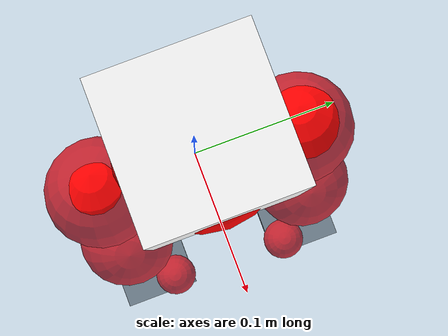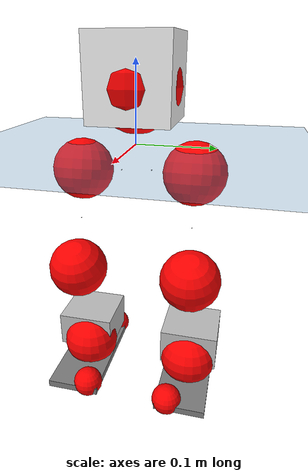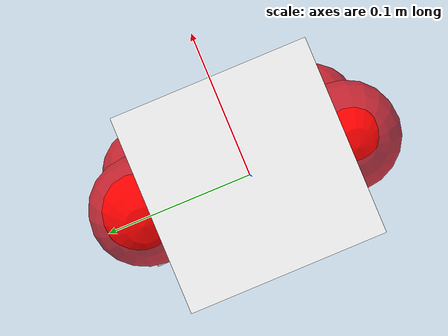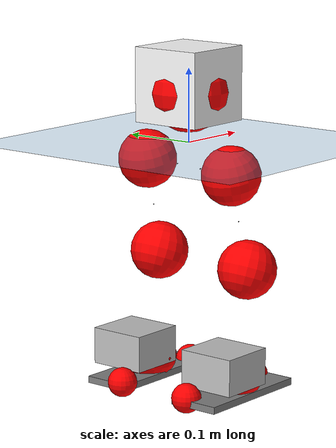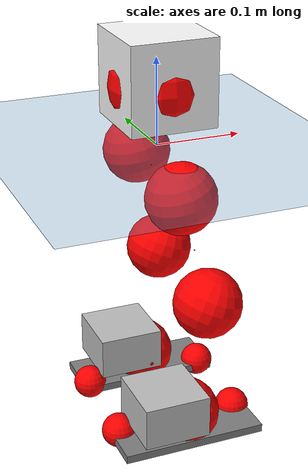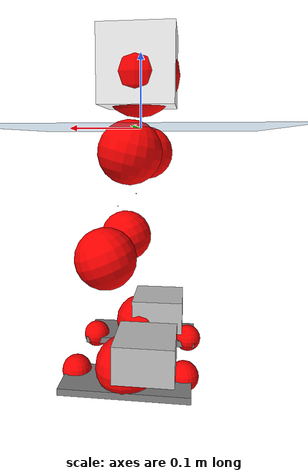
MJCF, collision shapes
<mujoco model="pi_12dof_release_v1">
  <compiler angle="radian" assetdir="assets" balanceinertia="true" inertiafromgeom="false"/>

  <option timestep="0.005" density="1.2" viscosity="2e-05"/>

  <size nkey="1"/>

  <visual>
    <quality shadowsize="8192"/>
    <map shadowclip="0.5"/>
  </visual>

  <default>
    <default class="/">
      <joint armature="0.01" damping="0.01" frictionloss="0.01"/>
      <geom contype="0" conaffinity="0" group="1" solref="-1000 -80"/>
      <site size="0.01 0.005 0.005" group="5"/>
      <general forcelimited="true" biastype="affine" gainprm="20" biasprm="0 -20 -0.5"/>
      <default class="foot">
        <geom size="0.0845 0.036 0.005" type="box" condim="6" group="4" priority="1" friction="0.9 0.2 0.2" solimp="0.015 1 0.005"/>
      </default>
      <default class="reward_collision_sphere">
        <geom group="5" rgba="1 0 0 1"/>
      </default>
    </default>
  </default>

  <asset>
    <texture type="skybox" colorspace="auto" name="//unnamed_texture_0" builtin="gradient" rgb1="0.95 0.95 0.95" rgb2="0.95 0.95 0.95" width="100" height="600"/>
    <texture type="2d" colorspace="auto" name="texplane" builtin="checker" rgb1="0.345 0.575 0.748" rgb2="0.345 0.575 0.748" markrgb="1 1 1" width="512" height="512"/>
    <material name="MatPlane" class="/" texture="texplane" texuniform="true" texrepeat="2 2" specular="0.9"/>
    <mesh name="baselink_1" class="/" file="baselink_1.STL"/>
    <mesh name="r_hip_pitch_link" class="/" file="r_hip_pitch_link.STL"/>
    <mesh name="r_hip_roll_link" class="/" file="r_hip_roll_link.STL"/>
    <mesh name="r_thigh_link" class="/" file="r_thigh_link.STL"/>
    <mesh name="r_calf_link" class="/" file="r_calf_link.STL"/>
    <mesh name="r_ankle_pitch_link" class="/" file="r_ankle_pitch_link.STL"/>
    <mesh name="r_ankle_roll_link" class="/" file="r_ankle_roll_link.STL"/>
    <mesh name="l_hip_pitch_link" class="/" file="l_hip_pitch_link.STL"/>
    <mesh name="l_hip_roll_link" class="/" file="l_hip_roll_link.STL"/>
    <mesh name="l_thigh_link" class="/" file="l_thigh_link.STL"/>
    <mesh name="l_calf_link" class="/" file="l_calf_link.STL"/>
    <mesh name="l_ankle_pitch_link" class="/" file="l_ankle_pitch_link.STL"/>
    <mesh name="l_ankle_roll_link" class="/" file="l_ankle_roll_link.STL"/>
  </asset>

  <worldbody>
    <geom name="floor" class="/" size="100 100 0.125" type="plane" group="0" material="MatPlane"/>
    <light name="toplight_shadow" class="/" pos="0 0 5" dir="0.0990148 0.0990148 -0.990148" type="directional" ambient="0.04 0.04 0.04" diffuse="0.55 0.55 0.55" specular="0.12 0.12 0.12"/>
    <light name="toplight_fill" class="/" pos="0 0 5" dir="0.0990148 0.0990148 -0.990148" type="directional" castshadow="false" ambient="0.04 0.04 0.04" diffuse="0.3 0.3 0.3" specular="0.08 0.08 0.08"/>
    <body name="trunk" pos="0.00197105 0.00195814 0.00101384" quat="1 0.000221627 -6.95812e-05 2.73547e-05">
      <inertial pos="0.00285408 -0.000816231 0.0393844" quat="0.694629 0.0156854 -0.00255234 0.719193" mass="2.19141" diaginertia="0.0153434 0.00724262 0.00356971"/>
      <joint name="//unnamed_joint_0" type="free"/>
      <geom name="//unnamed_geom_1" class="/" type="mesh" density="0" rgba="1 1 1 1" mesh="baselink_1"/>
      <geom name="//unnamed_geom_2" class="/" size="0.049989 0.049989 0.049989" pos="0 0 0.0776646" type="box" rgba="1 1 1 1"/>
      <geom name="//unnamed_geom_3" class="reward_collision_sphere" size="0.0549879" pos="0 0 0.0679565"/>
      <site name="imu" class="/" pos="0.00423111 0.00378804 -0.00604156" size="0.0099978"/>
      <camera name="track" class="/" pos="0 -1.89192 0" quat="0.707107 0.707107 0 0" mode="trackcom"/>
      <camera name="ego_camera" class="/" pos="0.0811928 0 0.174745" quat="-0.5 -0.5 0.5 0.5"/>
      <body name="r_hip_pitch_link" pos="-0.000842746 -0.0206644 -0.034491" quat="0.992206 0.00106434 -0.124606 4.78194e-05">
        <inertial pos="-0.000453956 -0.055712 0.000435101" quat="-0.0170291 0.706876 -0.0271705 0.70661" mass="0.371746" diaginertia="0.000162479 7.22347e-05 7.29509e-05"/>
        <joint name="r_hip_pitch_joint" class="/" pos="0 0 0" axis="-0.00482224 -0.999955 0.00813757" range="-1.71989 1.30551" armature="0.00988951" damping="0.017717" frictionloss="0.010009"/>
        <geom name="//unnamed_geom_4" class="/" type="mesh" density="0" rgba="0.75294 0.75294 0.75294 1" mesh="r_hip_pitch_link"/>
        <geom name="//unnamed_geom_5" class="/" size="0.00049989 0.00049989 0.00049989" type="box" rgba="0.75294 0.75294 0.75294 1"/>
        <body name="r_hip_roll_link" pos="-0.00293275 -0.0534396 -0.00166192" quat="0.999999 -0.000461377 0.00121593 -3.55414e-05">
          <inertial pos="-0.00114109 -0.00077566 -0.0599473" quat="0.698134 -0.0758423 -0.0800353 0.707426" mass="0.376843" diaginertia="0.000485193 0.000206845 0.000109085"/>
          <joint name="r_hip_roll_joint" class="/" pos="0 0 0" axis="-0.999918 0.00979338 0.00821461" stiffness="0.000801478" range="-0.136333 0.539915" armature="0.0109932" damping="0" frictionloss="0.00862204"/>
          <geom name="//unnamed_geom_6" class="/" type="mesh" density="0" rgba="0.75294 0.75294 0.75294 1" mesh="r_hip_roll_link"/>
          <geom name="//unnamed_geom_7" class="/" size="0.00049989 0.00049989 0.00049989" type="box" rgba="0.75294 0.75294 0.75294 1"/>
          <geom name="//unnamed_geom_8" class="reward_collision_sphere" size="0.0399912"/>
          <body name="r_thigh_link" pos="6.7615e-05 -0.000668555 -0.0659114" quat="0.999999 0.000976756 0.000661713 0.000356495">
            <inertial pos="0.00284702 -0.000100692 -0.0463079" quat="0.73328 0.679908 0.00142746 0.00481346" mass="0.120709" diaginertia="0.000185932 7.47007e-05 5.02065e-05"/>
            <joint name="r_thigh_joint" class="/" pos="0 0 0" axis="0.0111035 -0.0120847 -0.999865" stiffness="0.00370003" range="-0.246941 0.621549" armature="0.0102825" damping="9.95288e-05" frictionloss="0.00878999"/>
            <geom name="//unnamed_geom_9" class="/" type="mesh" density="0" rgba="0.75294 0.75294 0.75294 1" mesh="r_thigh_link"/>
            <geom name="//unnamed_geom_10" class="/" size="0.00049989 0.00049989 0.00049989" type="box" rgba="0.75294 0.75294 0.75294 1"/>
            <body name="r_calf_link" pos="-0.000847234 -0.00231335 -0.0701434" quat="0.947839 0.000199649 0.318748 0.000186124">
              <inertial pos="0.000896551 0.000571788 -0.0693053" quat="0.999904 0.00350984 -0.012352 0.00515" mass="0.819857" diaginertia="0.00538646 0.00260041 0.000152911"/>
              <joint name="r_calf_joint" class="/" pos="0 0 0" axis="0.000370236 -1 0.000405254" range="-1.62963 0.64531" armature="0.0112124" damping="0.00742498" frictionloss="0.0102381"/>
              <geom name="//unnamed_geom_11" class="/" type="mesh" density="0" rgba="0.75294 0.75294 0.75294 1" mesh="r_calf_link"/>
              <geom name="//unnamed_geom_12" class="/" size="0.00049989 0.00049989 0.00049989" type="box" rgba="0.75294 0.75294 0.75294 1"/>
              <geom name="//unnamed_geom_13" class="reward_collision_sphere" size="0.0399912"/>
              <body name="r_ankle_pitch_link" pos="-0.000733825 -0.00234857 -0.133433" quat="0.980083 2.20369e-05 -0.198587 5.50563e-05">
                <inertial pos="0.00254983 0.00367545 0.000229806" quat="0.00148149 0.707082 -0.00178268 0.707128" mass="0.179174" diaginertia="0.000463098 0.000169958 0.00010491"/>
                <joint name="r_ankle_pitch_joint" class="/" pos="0 0 0" axis="0.000899337 -0.999874 -0.0158431" stiffness="0.0093016" range="-1.25382 0.495711" armature="0.00896172" damping="0.0196507" frictionloss="0.00860999"/>
                <geom name="//unnamed_geom_14" class="/" type="mesh" density="0" rgba="0.75294 0.75294 0.75294 1" mesh="r_ankle_pitch_link"/>
                <geom name="//unnamed_geom_15" class="/" size="0.0389914 0.0399912 0.0249945" type="box" rgba="0.75294 0.75294 0.75294 1"/>
                <body name="r_ankle_roll_link" pos="0.0819508 0.0054769 0.00211584" quat="1 -0.000229143 0.000380056 -0.000227346">
                  <inertial pos="-0.0254188 -0.00260041 -0.0117686" quat="0.560734 0.42993 0.434773 0.55831" mass="0.507042" diaginertia="0.00175086 0.000808899 0.000249158"/>
                  <joint name="r_ankle_roll_joint" class="/" pos="0 0 0" axis="-0.999991 0.00231601 -0.00358416" range="-0.14404 0.164312" armature="0.0103033" damping="0.0132078" frictionloss="0.0102787"/>
                  <geom name="//unnamed_geom_16" class="/" type="mesh" density="0" rgba="0.75294 0.75294 0.75294 1" mesh="r_ankle_roll_link"/>
                  <geom name="//unnamed_geom_17" class="/" type="mesh" rgba="0.75294 0.75294 0.75294 1" mesh="r_ankle_roll_link"/>
                  <geom name="right_foot" class="foot" size="0.0852706 0.0357739 0.0047667" pos="-0.0552111 0 -0.0427155"/>
                  <geom name="//unnamed_geom_19" class="reward_collision_sphere" size="0.0399912" pos="-0.0541285 0 -0.0194161"/>
                  <geom name="//unnamed_geom_20" class="reward_collision_sphere" size="0.0199956" pos="0.0162386 0.0189192 -0.0388323"/>
                  <geom name="//unnamed_geom_21" class="reward_collision_sphere" size="0.0199956" pos="-0.129909 0.0189192 -0.0388323"/>
                  <site name="right_foot" class="foot" pos="-0.0552111 0 -0.0427155" size="0.0099978"/>
                </body>
              </body>
            </body>
          </body>
        </body>
      </body>
      <body name="l_hip_pitch_link" pos="-0.000249857 0.0188892 -0.0321099" quat="0.992199 1.44682e-05 -0.124665 4.70105e-06">
        <inertial pos="0.00236869 0.0507589 6.3765e-05" quat="-0.0332679 0.703394 0.0383839 0.708983" mass="0.374744" diaginertia="0.000187791 7.89415e-05 8.38747e-05"/>
        <joint name="l_hip_pitch_joint" class="/" pos="0 0 0" axis="0.000224499 1 0.000607027" range="-1.28083 1.73905" armature="0.00943369" damping="0.0127483" frictionloss="0.0112625"/>
        <geom name="//unnamed_geom_22" class="/" type="mesh" density="0" rgba="0.75294 0.75294 0.75294 1" mesh="l_hip_pitch_link"/>
        <geom name="//unnamed_geom_23" class="/" size="0.00049989 0.00049989 0.00049989" type="box" rgba="0.75294 0.75294 0.75294 1"/>
        <body name="l_hip_roll_link" pos="0.00344162 0.0552844 -0.000894394" quat="0.999999 0.000478443 -0.000207307 -0.000982706">
          <inertial pos="-8.49558e-05 0.00118532 -0.0599212" quat="0.708347 -0.0728216 -0.0746796 0.698114" mass="0.402216" diaginertia="0.000494451 0.000214946 0.000113642"/>
          <joint name="l_hip_roll_joint" class="/" pos="0 0 0" axis="-0.999937 0.00936994 -0.00626075" range="-0.484056 0.162288" armature="0.0112959" damping="0" frictionloss="0.00860929"/>
          <geom name="//unnamed_geom_24" class="/" type="mesh" density="0" rgba="0.75294 0.75294 0.75294 1" mesh="l_hip_roll_link"/>
          <geom name="//unnamed_geom_25" class="/" size="0.00049989 0.00049989 0.00049989" type="box" rgba="0.75294 0.75294 0.75294 1"/>
          <geom name="//unnamed_geom_26" class="reward_collision_sphere" size="0.0399912"/>
          <body name="l_thigh_link" pos="-0.00211566 0.0016666 -0.0679375" quat="1 0.000180689 -4.1453e-05 0.00032939">
            <inertial pos="-0.000251484 -0.0014639 -0.0458594" quat="0.682789 0.73056 -0.00247139 0.0086807" mass="0.110827" diaginertia="0.000187688 7.00267e-05 5.0057e-05"/>
            <joint name="l_thigh_joint" class="/" pos="0 0 0" axis="-0.00523912 -0.000622354 -0.999986" range="-0.629606 0.31944" armature="0.0103516" damping="0" frictionloss="0.00948747"/>
            <geom name="//unnamed_geom_27" class="/" type="mesh" density="0" rgba="0.75294 0.75294 0.75294 1" mesh="l_thigh_link"/>
            <geom name="//unnamed_geom_28" class="/" size="0.00049989 0.00049989 0.00049989" type="box" rgba="0.75294 0.75294 0.75294 1"/>
            <body name="l_calf_link" pos="-0.00160456 0.00305168 -0.0692201" quat="0.947678 0.000596778 0.319227 -0.000424262">
              <inertial pos="0.00325709 0.0055958 -0.0690399" quat="0.999938 0.00911116 0.00210531 0.00607719" mass="0.815549" diaginertia="0.00543592 0.002754 0.00015637"/>
              <joint name="l_calf_joint" class="/" pos="0 0 0" axis="0.00798255 0.999957 -0.00478135" range="-0.593682 1.69173" armature="0.0101094" damping="0.00208114" frictionloss="0.00882402"/>
              <geom name="//unnamed_geom_29" class="/" type="mesh" density="0" rgba="0.75294 0.75294 0.75294 1" mesh="l_calf_link"/>
              <geom name="//unnamed_geom_30" class="/" size="0.00049989 0.00049989 0.00049989" type="box" rgba="0.75294 0.75294 0.75294 1"/>
              <geom name="//unnamed_geom_31" class="reward_collision_sphere" size="0.0399912"/>
              <body name="l_ankle_pitch_link" pos="0.000588925 0.000574525 -0.134521" quat="0.980095 -0.000856411 -0.198527 0.000371902">
                <inertial pos="0.00649036 0.000177831 0.00072999" quat="-0.00404542 0.70886 0.00240197 0.705333" mass="0.175323" diaginertia="0.00046308 0.000173619 0.000104362"/>
                <joint name="l_ankle_pitch_joint" class="/" pos="0 0 0" axis="-0.00296726 0.999962 0.0081867" stiffness="0.00370674" range="-0.450314 1.36002" armature="0.00947732" damping="0" frictionloss="0.00992435"/>
                <geom name="//unnamed_geom_32" class="/" type="mesh" density="0" rgba="0.75294 0.75294 0.75294 1" mesh="l_ankle_pitch_link"/>
                <geom name="//unnamed_geom_33" class="/" size="0.0389914 0.0399912 0.0249945" type="box" rgba="0.75294 0.75294 0.75294 1"/>
                <body name="l_ankle_roll_link" pos="0.0804776 -0.000398279 -0.000374862" quat="1 -3.77441e-05 8.48398e-06 3.49487e-06">
                  <inertial pos="-0.0280831 -0.000781809 -0.012616" quat="0.557189 0.429557 0.437769 0.559803" mass="0.540107" diaginertia="0.0016439 0.000812845 0.000247745"/>
                  <joint name="l_ankle_roll_joint" class="/" pos="0 0 0" axis="-0.999981 0.00399644 0.00465681" stiffness="0.00637378" range="-0.148352 0.0965845" armature="0.00961727" damping="0.016255" frictionloss="0.0110331"/>
                  <geom name="//unnamed_geom_34" class="/" type="mesh" density="0" rgba="0.75294 0.75294 0.75294 1" mesh="l_ankle_roll_link"/>
                  <geom name="//unnamed_geom_35" class="/" type="mesh" rgba="0.75294 0.75294 0.75294 1" mesh="l_ankle_roll_link"/>
                  <geom name="left_foot" class="foot" size="0.0845217 0.0339961 0.00456491" pos="-0.0552111 0 -0.0427155"/>
                  <geom name="//unnamed_geom_37" class="reward_collision_sphere" size="0.0399912" pos="-0.0541285 0 -0.0194161"/>
                  <geom name="//unnamed_geom_38" class="reward_collision_sphere" size="0.0199956" pos="0.0162386 -0.0189192 -0.0388323"/>
                  <geom name="//unnamed_geom_39" class="reward_collision_sphere" size="0.0199956" pos="-0.129909 -0.0189192 -0.0388323"/>
                  <site name="left_foot" class="foot" pos="-0.0552111 0 -0.0427155" size="0.0099978"/>
                </body>
              </body>
            </body>
          </body>
        </body>
      </body>
    </body>
  </worldbody>

  <contact>
    <pair class="/" geom1="floor" geom2="right_foot" name="//unnamed_contact_1"/>
    <pair class="/" geom1="floor" geom2="left_foot" name="//unnamed_contact_0"/>
  </contact>

  <actuator>
    <general name="r_hip_pitch_joint" class="/" joint="r_hip_pitch_joint" forcerange="-22.9067 22.9067" gainprm="19.5742" biasprm="0 -19.5742 -0.504432"/>
    <general name="r_hip_roll_joint" class="/" joint="r_hip_roll_joint" forcerange="-22.4092 22.4092" gainprm="19.5742" biasprm="0 -19.5742 -0.504432"/>
    <general name="r_thigh_joint" class="/" joint="r_thigh_joint" forcerange="-19.5621 19.5621" gainprm="19.5742" biasprm="0 -19.5742 -0.504432"/>
    <general name="r_calf_joint" class="/" joint="r_calf_joint" forcerange="-21.8365 21.8365" gainprm="19.5742" biasprm="0 -19.5742 -0.504432"/>
    <general name="r_ankle_pitch_joint" class="/" joint="r_ankle_pitch_joint" forcerange="-20.3682 20.3682" gainprm="19.5742" biasprm="0 -19.5742 -0.504432"/>
    <general name="r_ankle_roll_joint" class="/" joint="r_ankle_roll_joint" forcerange="-21.8498 21.8498" gainprm="19.5742" biasprm="0 -19.5742 -0.504432"/>
    <general name="l_hip_pitch_joint" class="/" joint="l_hip_pitch_joint" forcerange="-21.0652 21.0652" gainprm="19.5742" biasprm="0 -19.5742 -0.504432"/>
    <general name="l_hip_roll_joint" class="/" joint="l_hip_roll_joint" forcerange="-19.1728 19.1728" gainprm="19.5742" biasprm="0 -19.5742 -0.504432"/>
    <general name="l_thigh_joint" class="/" joint="l_thigh_joint" forcerange="-22.7404 22.7404" gainprm="19.5742" biasprm="0 -19.5742 -0.504432"/>
    <general name="l_calf_joint" class="/" joint="l_calf_joint" forcerange="-20.7853 20.7853" gainprm="19.5742" biasprm="0 -19.5742 -0.504432"/>
    <general name="l_ankle_pitch_joint" class="/" joint="l_ankle_pitch_joint" forcerange="-20.2726 20.2726" gainprm="19.5742" biasprm="0 -19.5742 -0.504432"/>
    <general name="l_ankle_roll_joint" class="/" joint="l_ankle_roll_joint" forcerange="-23.2006 23.2006" gainprm="19.5742" biasprm="0 -19.5742 -0.504432"/>
  </actuator>

  <sensor>
    <gyro site="imu" name="imu_angular_velocity"/>
    <velocimeter site="imu" name="imu_linear_velocity"/>
    <framelinvel objtype="site" objname="left_foot" name="left_foot_global_linear_velocity"/>
    <framelinvel objtype="site" objname="right_foot" name="right_foot_global_linear_velocity"/>
  </sensor>

  <keyframe>
    <key name="home" qpos="0 0 0.291 1 0 0 0 0.4 0 0 -0.8 0.4 0 -0.4 0 0 0.8 -0.4 0"/>
  </keyframe>
</mujoco>
